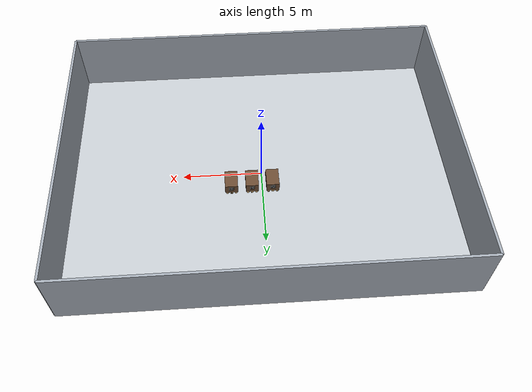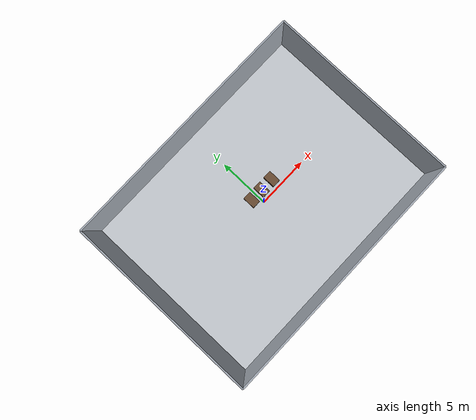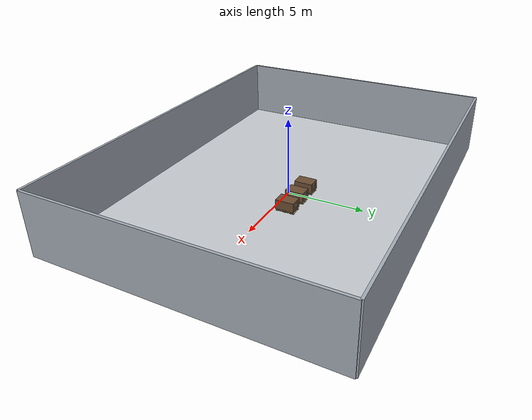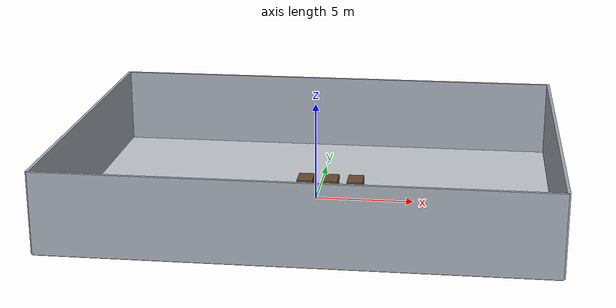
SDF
<sdf version="1.9">
 <world name="demo_room">
  <gravity>0 0 -9.81</gravity>
  <magnetic_field>6e-06 2.3e-05 -4.2e-05</magnetic_field>
  <physics name="dart_physics" type="dart">
   <max_step_size>0.001</max_step_size>
   <real_time_factor>1.0</real_time_factor>
   <real_time_update_rate>1000</real_time_update_rate>
  </physics>
  <plugin filename="gz-sim-physics-system" name="gz::sim::systems::Physics"/>
  <plugin filename="gz-sim-user-commands-system" name="gz::sim::systems::UserCommands"/>
  <plugin filename="gz-sim-scene-broadcaster-system" name="gz::sim::systems::SceneBroadcaster"/>
  <plugin filename="gz-sim-sensors-system" name="gz::sim::systems::Sensors">
   <render_engine>ogre2</render_engine>
  </plugin>
  <light type="directional" name="sun">
   <pose>0 0 10 0 0 0</pose>
   <diffuse>0.9 0.9 0.9 1.0</diffuse>
   <specular>0.2 0.2 0.2 1.0</specular>
   <attenuation>
    <range>1000</range>
    <constant>0.9</constant>
    <linear>0.01</linear>
    <quadratic>0.001</quadratic>
   </attenuation>
   <direction>-0.4 0.1 -0.9</direction>
  </light>
  <model name="floor">
   <static>true</static>
   <link name="floor_link">
    <collision name="floor_collision">
     <geometry><box><size>24 18 0.1</size></box></geometry>
     <surface>
      <friction>
       <ode><mu>200.0</mu><mu2>200.0</mu2><slip1>0.0</slip1><slip2>0.0</slip2></ode>
       <bullet><friction>200.0</friction><friction2>200.0</friction2></bullet>
      </friction>
     </surface>
    </collision>
    <visual name="floor_visual">
     <geometry><box><size>24 18 0.1</size></box></geometry>
     <material><ambient>0.78 0.80 0.82 1.0</ambient><diffuse>0.78 0.80 0.82 1.0</diffuse></material>
    </visual>
   </link>
  </model>
  <model name="north_wall">
   <static>true</static>
   <pose>0 9 2 0 0 0</pose>
   <link name="link">
    <collision name="collision"><geometry><box><size>24 0.15 4.0</size></box></geometry></collision>
    <visual name="visual">
     <geometry><box><size>24 0.15 4.0</size></box></geometry>
     <material><ambient>0.65 0.68 0.72 1.0</ambient><diffuse>0.65 0.68 0.72 1.0</diffuse></material>
    </visual>
   </link>
  </model>
  <model name="south_wall">
   <static>true</static>
   <pose>0 -9 2 0 0 0</pose>
   <link name="link">
    <collision name="collision"><geometry><box><size>24 0.15 4.0</size></box></geometry></collision>
    <visual name="visual">
     <geometry><box><size>24 0.15 4.0</size></box></geometry>
     <material><ambient>0.65 0.68 0.72 1.0</ambient><diffuse>0.65 0.68 0.72 1.0</diffuse></material>
    </visual>
   </link>
  </model>
  <model name="east_wall">
   <static>true</static>
   <pose>12 0 2 0 0 0</pose>
   <link name="link">
    <collision name="collision"><geometry><box><size>0.15 18 4.0</size></box></geometry></collision>
    <visual name="visual">
     <geometry><box><size>0.15 18 4.0</size></box></geometry>
     <material><ambient>0.65 0.68 0.72 1.0</ambient><diffuse>0.65 0.68 0.72 1.0</diffuse></material>
    </visual>
   </link>
  </model>
  <model name="west_wall">
   <static>true</static>
   <pose>-12 0 2 0 0 0</pose>
   <link name="link">
    <collision name="collision"><geometry><box><size>0.15 18 4.0</size></box></geometry></collision>
    <visual name="visual">
     <geometry><box><size>0.15 18 4.0</size></box></geometry>
     <material><ambient>0.65 0.68 0.72 1.0</ambient><diffuse>0.65 0.68 0.72 1.0</diffuse></material>
    </visual>
   </link>
  </model>
  <include>
   <name>pallet_b_south_05</name>
   <uri>model://euro_pallet_tag36h11_05</uri>
   <pose>-0.65 0.90 0 0 0 1.57079632679</pose>
   <static>false</static>
  </include>
  <include>
   <name>pallet_b_south_06</name>
   <uri>model://euro_pallet_tag36h11_06</uri>
   <pose>0.65 0.90 0 0 0 1.57079632679</pose>
   <static>false</static>
  </include>
  <include>
   <name>pallet_b_south_07</name>
   <uri>model://euro_pallet_tag36h11_07</uri>
   <pose>1.95 0.90 0 0 0 1.57079632679</pose>
   <static>false</static>
  </include>
 </world>
</sdf>

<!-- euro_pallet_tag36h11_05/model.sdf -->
<sdf version="1.9">
  <model name="euro_pallet_tag36h11_05">
    <pose>0 0 0 0 0 0</pose>
    <static>false</static>
    <self_collide>false</self_collide>
    <allow_auto_disable>false</allow_auto_disable>

    <link name="pallet_link">
      <pose>0 0 0.06 0 0 0</pose>
      <inertial>
        <pose>0 0 0.072 0 0 0</pose>
        <mass>25.0</mass>
        <inertia>
          <ixx>1.38</ixx>
          <iyy>3.04</iyy>
          <izz>4.33</izz>
          <ixy>0.0</ixy>
          <ixz>0.0</ixz>
          <iyz>0.0</iyz>
        </inertia>
      </inertial>

      <collision name="top_board_outer_left_collision">
        <pose>0 -0.35 0.133 0 0 0</pose>
        <geometry>
          <box>
            <size>1.2 0.10 0.022</size>
          </box>
        </geometry>
      </collision>
      <collision name="top_board_inner_left_collision">
        <pose>0 -0.17 0.133 0 0 0</pose>
        <geometry>
          <box>
            <size>1.2 0.145 0.022</size>
          </box>
        </geometry>
      </collision>
      <collision name="top_board_center_collision">
        <pose>0 0 0.133 0 0 0</pose>
        <geometry>
          <box>
            <size>1.2 0.145 0.022</size>
          </box>
        </geometry>
      </collision>
      <collision name="top_board_inner_right_collision">
        <pose>0 0.17 0.133 0 0 0</pose>
        <geometry>
          <box>
            <size>1.2 0.145 0.022</size>
          </box>
        </geometry>
      </collision>
      <collision name="top_board_outer_right_collision">
        <pose>0 0.35 0.133 0 0 0</pose>
        <geometry>
          <box>
            <size>1.2 0.10 0.022</size>
          </box>
        </geometry>
      </collision>

      <collision name="bottom_board_left_collision">
        <pose>0 -0.34 0.011 0 0 0</pose>
        <geometry>
          <box>
            <size>1.2 0.10 0.022</size>
          </box>
        </geometry>
        <surface>
          <friction>
            <ode>
              <mu>1.2</mu>
              <mu2>1.2</mu2>
              <slip1>0.0</slip1>
              <slip2>0.0</slip2>
            </ode>
            <bullet>
              <friction>1.2</friction>
              <friction2>1.2</friction2>
            </bullet>
          </friction>
        </surface>
      </collision>
      <collision name="bottom_board_center_collision">
        <pose>0 0 0.011 0 0 0</pose>
        <geometry>
          <box>
            <size>1.2 0.10 0.022</size>
          </box>
        </geometry>
        <surface>
          <friction>
            <ode>
              <mu>1.2</mu>
              <mu2>1.2</mu2>
              <slip1>0.0</slip1>
              <slip2>0.0</slip2>
            </ode>
            <bullet>
              <friction>1.2</friction>
              <friction2>1.2</friction2>
            </bullet>
          </friction>
        </surface>
      </collision>
      <collision name="bottom_board_right_collision">
        <pose>0 0.34 0.011 0 0 0</pose>
        <geometry>
          <box>
            <size>1.2 0.10 0.022</size>
          </box>
        </geometry>
        <surface>
          <friction>
            <ode>
              <mu>1.2</mu>
              <mu2>1.2</mu2>
              <slip1>0.0</slip1>
              <slip2>0.0</slip2>
            </ode>
            <bullet>
              <friction>1.2</friction>
              <friction2>1.2</friction2>
            </bullet>
          </friction>
        </surface>
      </collision>

      <collision name="block_1_collision">
        <pose>-0.46 -0.35 0.061 0 0 0</pose>
        <geometry>
          <box>
            <size>0.145 0.10 0.078</size>
          </box>
        </geometry>
      </collision>
      <collision name="block_2_collision">
        <pose>0 -0.35 0.061 0 0 0</pose>
        <geometry>
          <box>
            <size>0.145 0.10 0.078</size>
          </box>
        </geometry>
      </collision>
      <collision name="block_3_collision">
        <pose>0.46 -0.35 0.061 0 0 0</pose>
        <geometry>
          <box>
            <size>0.145 0.10 0.078</size>
          </box>
        </geometry>
      </collision>
      <collision name="block_4_collision">
        <pose>-0.46 0 0.061 0 0 0</pose>
        <geometry>
          <box>
            <size>0.145 0.10 0.078</size>
          </box>
        </geometry>
      </collision>
      <collision name="block_5_collision">
        <pose>0 0 0.061 0 0 0</pose>
        <geometry>
          <box>
            <size>0.145 0.10 0.078</size>
          </box>
        </geometry>
      </collision>
      <collision name="block_6_collision">
        <pose>0.46 0 0.061 0 0 0</pose>
        <geometry>
          <box>
            <size>0.145 0.10 0.078</size>
          </box>
        </geometry>
      </collision>
      <collision name="block_7_collision">
        <pose>-0.46 0.35 0.061 0 0 0</pose>
        <geometry>
          <box>
            <size>0.145 0.10 0.078</size>
          </box>
        </geometry>
      </collision>
      <collision name="block_8_collision">
        <pose>0 0.35 0.061 0 0 0</pose>
        <geometry>
          <box>
            <size>0.145 0.10 0.078</size>
          </box>
        </geometry>
      </collision>
      <collision name="block_9_collision">
        <pose>0.46 0.35 0.061 0 0 0</pose>
        <geometry>
          <box>
            <size>0.145 0.10 0.078</size>
          </box>
        </geometry>
      </collision>
      <collision name="marker_box_collision">
        <pose>0 0 0.444 0 0 0</pose>
        <geometry>
          <box>
            <size>1.2 0.8 0.60</size>
          </box>
        </geometry>
      </collision>

      <visual name="top_board_outer_left">
        <pose>0 -0.35 0.133 0 0 0</pose>
        <geometry>
          <box>
            <size>1.2 0.10 0.022</size>
          </box>
        </geometry>
        <material>
          <ambient>0.67 0.54 0.34 1.0</ambient>
          <diffuse>0.67 0.54 0.34 1.0</diffuse>
        </material>
      </visual>
      <visual name="top_board_inner_left">
        <pose>0 -0.17 0.133 0 0 0</pose>
        <geometry>
          <box>
            <size>1.2 0.145 0.022</size>
          </box>
        </geometry>
        <material>
          <ambient>0.69 0.56 0.36 1.0</ambient>
          <diffuse>0.69 0.56 0.36 1.0</diffuse>
        </material>
      </visual>
      <visual name="top_board_center">
        <pose>0 0 0.133 0 0 0</pose>
        <geometry>
          <box>
            <size>1.2 0.145 0.022</size>
          </box>
        </geometry>
        <material>
          <ambient>0.66 0.53 0.33 1.0</ambient>
          <diffuse>0.66 0.53 0.33 1.0</diffuse>
        </material>
      </visual>
      <visual name="top_board_inner_right">
        <pose>0 0.17 0.133 0 0 0</pose>
        <geometry>
          <box>
            <size>1.2 0.145 0.022</size>
          </box>
        </geometry>
        <material>
          <ambient>0.69 0.56 0.36 1.0</ambient>
          <diffuse>0.69 0.56 0.36 1.0</diffuse>
        </material>
      </visual>
      <visual name="top_board_outer_right">
        <pose>0 0.35 0.133 0 0 0</pose>
        <geometry>
          <box>
            <size>1.2 0.10 0.022</size>
          </box>
        </geometry>
        <material>
          <ambient>0.67 0.54 0.34 1.0</ambient>
          <diffuse>0.67 0.54 0.34 1.0</diffuse>
        </material>
      </visual>

      <visual name="bottom_board_left">
        <pose>0 -0.27 0.011 0 0 0</pose>
        <geometry>
          <box>
            <size>1.2 0.145 0.022</size>
          </box>
        </geometry>
        <material>
          <ambient>0.60 0.48 0.30 1.0</ambient>
          <diffuse>0.60 0.48 0.30 1.0</diffuse>
        </material>
      </visual>
      <visual name="bottom_board_center">
        <pose>0 0 0.011 0 0 0</pose>
        <geometry>
          <box>
            <size>1.2 0.145 0.022</size>
          </box>
        </geometry>
        <material>
          <ambient>0.60 0.48 0.30 1.0</ambient>
          <diffuse>0.60 0.48 0.30 1.0</diffuse>
        </material>
      </visual>
      <visual name="bottom_board_right">
        <pose>0 0.27 0.011 0 0 0</pose>
        <geometry>
          <box>
            <size>1.2 0.145 0.022</size>
          </box>
        </geometry>
        <material>
          <ambient>0.60 0.48 0.30 1.0</ambient>
          <diffuse>0.60 0.48 0.30 1.0</diffuse>
        </material>
      </visual>

      <visual name="block_1">
        <pose>-0.46 -0.35 0.061 0 0 0</pose>
        <geometry>
          <box>
            <size>0.145 0.10 0.078</size>
          </box>
        </geometry>
        <material>
          <ambient>0.55 0.43 0.26 1.0</ambient>
          <diffuse>0.55 0.43 0.26 1.0</diffuse>
        </material>
      </visual>
      <visual name="block_2">
        <pose>0 -0.35 0.061 0 0 0</pose>
        <geometry>
          <box>
            <size>0.145 0.10 0.078</size>
          </box>
        </geometry>
        <material>
          <ambient>0.55 0.43 0.26 1.0</ambient>
          <diffuse>0.55 0.43 0.26 1.0</diffuse>
        </material>
      </visual>
      <visual name="block_3">
        <pose>0.46 -0.35 0.061 0 0 0</pose>
        <geometry>
          <box>
            <size>0.145 0.10 0.078</size>
          </box>
        </geometry>
        <material>
          <ambient>0.55 0.43 0.26 1.0</ambient>
          <diffuse>0.55 0.43 0.26 1.0</diffuse>
        </material>
      </visual>
      <visual name="block_4">
        <pose>-0.46 0 0.061 0 0 0</pose>
        <geometry>
          <box>
            <size>0.145 0.10 0.078</size>
          </box>
        </geometry>
        <material>
          <ambient>0.55 0.43 0.26 1.0</ambient>
          <diffuse>0.55 0.43 0.26 1.0</diffuse>
        </material>
      </visual>
      <visual name="block_5">
        <pose>0 0 0.061 0 0 0</pose>
        <geometry>
          <box>
            <size>0.145 0.10 0.078</size>
          </box>
        </geometry>
        <material>
          <ambient>0.55 0.43 0.26 1.0</ambient>
          <diffuse>0.55 0.43 0.26 1.0</diffuse>
        </material>
      </visual>
      <visual name="block_6">
        <pose>0.46 0 0.061 0 0 0</pose>
        <geometry>
          <box>
            <size>0.145 0.10 0.078</size>
          </box>
        </geometry>
        <material>
          <ambient>0.55 0.43 0.26 1.0</ambient>
          <diffuse>0.55 0.43 0.26 1.0</diffuse>
        </material>
      </visual>
      <visual name="block_7">
        <pose>-0.46 0.35 0.061 0 0 0</pose>
        <geometry>
          <box>
            <size>0.145 0.10 0.078</size>
          </box>
        </geometry>
        <material>
          <ambient>0.55 0.43 0.26 1.0</ambient>
          <diffuse>0.55 0.43 0.26 1.0</diffuse>
        </material>
      </visual>
      <visual name="block_8">
        <pose>0 0.35 0.061 0 0 0</pose>
        <geometry>
          <box>
            <size>0.145 0.10 0.078</size>
          </box>
        </geometry>
        <material>
          <ambient>0.55 0.43 0.26 1.0</ambient>
          <diffuse>0.55 0.43 0.26 1.0</diffuse>
        </material>
      </visual>
      <visual name="block_9">
        <pose>0.46 0.35 0.061 0 0 0</pose>
        <geometry>
          <box>
            <size>0.145 0.10 0.078</size>
          </box>
        </geometry>
        <material>
          <ambient>0.55 0.43 0.26 1.0</ambient>
          <diffuse>0.55 0.43 0.26 1.0</diffuse>
        </material>
      </visual>
      <visual name="apriltag_front_black_plate">
        <pose>0.602 0 0.500 0 0 0</pose>
        <geometry>
          <box>
            <size>0.002 0.300 0.300</size>
          </box>
        </geometry>
        <material>
          <ambient>0 0 0 1</ambient>
          <diffuse>0 0 0 1</diffuse>
          <specular>0 0 0 1</specular>
        </material>
      </visual>
      <visual name="apriltag_front_white_r00_00_09">
        <pose>0.605 0.000 0.635 0 0 0</pose>
        <geometry>
          <box>
            <size>0.003 0.300 0.030</size>
          </box>
        </geometry>
        <material>
          <ambient>1 1 1 1</ambient>
          <diffuse>1 1 1 1</diffuse>
          <specular>0.05 0.05 0.05 1</specular>
        </material>
      </visual>
      <visual name="apriltag_front_white_r01_00_00">
        <pose>0.605 -0.135 0.605 0 0 0</pose>
        <geometry>
          <box>
            <size>0.003 0.030 0.030</size>
          </box>
        </geometry>
        <material>
          <ambient>1 1 1 1</ambient>
          <diffuse>1 1 1 1</diffuse>
          <specular>0.05 0.05 0.05 1</specular>
        </material>
      </visual>
      <visual name="apriltag_front_white_r01_09_09">
        <pose>0.605 0.135 0.605 0 0 0</pose>
        <geometry>
          <box>
            <size>0.003 0.030 0.030</size>
          </box>
        </geometry>
        <material>
          <ambient>1 1 1 1</ambient>
          <diffuse>1 1 1 1</diffuse>
          <specular>0.05 0.05 0.05 1</specular>
        </material>
      </visual>
      <visual name="apriltag_front_white_r02_00_00">
        <pose>0.605 -0.135 0.575 0 0 0</pose>
        <geometry>
          <box>
            <size>0.003 0.030 0.030</size>
          </box>
        </geometry>
        <material>
          <ambient>1 1 1 1</ambient>
          <diffuse>1 1 1 1</diffuse>
          <specular>0.05 0.05 0.05 1</specular>
        </material>
      </visual>
      <visual name="apriltag_front_white_r02_02_05">
        <pose>0.605 -0.030 0.575 0 0 0</pose>
        <geometry>
          <box>
            <size>0.003 0.120 0.030</size>
          </box>
        </geometry>
        <material>
          <ambient>1 1 1 1</ambient>
          <diffuse>1 1 1 1</diffuse>
          <specular>0.05 0.05 0.05 1</specular>
        </material>
      </visual>
      <visual name="apriltag_front_white_r02_09_09">
        <pose>0.605 0.135 0.575 0 0 0</pose>
        <geometry>
          <box>
            <size>0.003 0.030 0.030</size>
          </box>
        </geometry>
        <material>
          <ambient>1 1 1 1</ambient>
          <diffuse>1 1 1 1</diffuse>
          <specular>0.05 0.05 0.05 1</specular>
        </material>
      </visual>
      <visual name="apriltag_front_white_r03_00_00">
        <pose>0.605 -0.135 0.545 0 0 0</pose>
        <geometry>
          <box>
            <size>0.003 0.030 0.030</size>
          </box>
        </geometry>
        <material>
          <ambient>1 1 1 1</ambient>
          <diffuse>1 1 1 1</diffuse>
          <specular>0.05 0.05 0.05 1</specular>
        </material>
      </visual>
      <visual name="apriltag_front_white_r03_02_03">
        <pose>0.605 -0.060 0.545 0 0 0</pose>
        <geometry>
          <box>
            <size>0.003 0.060 0.030</size>
          </box>
        </geometry>
        <material>
          <ambient>1 1 1 1</ambient>
          <diffuse>1 1 1 1</diffuse>
          <specular>0.05 0.05 0.05 1</specular>
        </material>
      </visual>
      <visual name="apriltag_front_white_r03_07_07">
        <pose>0.605 0.075 0.545 0 0 0</pose>
        <geometry>
          <box>
            <size>0.003 0.030 0.030</size>
          </box>
        </geometry>
        <material>
          <ambient>1 1 1 1</ambient>
          <diffuse>1 1 1 1</diffuse>
          <specular>0.05 0.05 0.05 1</specular>
        </material>
      </visual>
      <visual name="apriltag_front_white_r03_09_09">
        <pose>0.605 0.135 0.545 0 0 0</pose>
        <geometry>
          <box>
            <size>0.003 0.030 0.030</size>
          </box>
        </geometry>
        <material>
          <ambient>1 1 1 1</ambient>
          <diffuse>1 1 1 1</diffuse>
          <specular>0.05 0.05 0.05 1</specular>
        </material>
      </visual>
      <visual name="apriltag_front_white_r04_00_00">
        <pose>0.605 -0.135 0.515 0 0 0</pose>
        <geometry>
          <box>
            <size>0.003 0.030 0.030</size>
          </box>
        </geometry>
        <material>
          <ambient>1 1 1 1</ambient>
          <diffuse>1 1 1 1</diffuse>
          <specular>0.05 0.05 0.05 1</specular>
        </material>
      </visual>
      <visual name="apriltag_front_white_r04_02_03">
        <pose>0.605 -0.060 0.515 0 0 0</pose>
        <geometry>
          <box>
            <size>0.003 0.060 0.030</size>
          </box>
        </geometry>
        <material>
          <ambient>1 1 1 1</ambient>
          <diffuse>1 1 1 1</diffuse>
          <specular>0.05 0.05 0.05 1</specular>
        </material>
      </visual>
      <visual name="apriltag_front_white_r04_05_06">
        <pose>0.605 0.030 0.515 0 0 0</pose>
        <geometry>
          <box>
            <size>0.003 0.060 0.030</size>
          </box>
        </geometry>
        <material>
          <ambient>1 1 1 1</ambient>
          <diffuse>1 1 1 1</diffuse>
          <specular>0.05 0.05 0.05 1</specular>
        </material>
      </visual>
      <visual name="apriltag_front_white_r04_09_09">
        <pose>0.605 0.135 0.515 0 0 0</pose>
        <geometry>
          <box>
            <size>0.003 0.030 0.030</size>
          </box>
        </geometry>
        <material>
          <ambient>1 1 1 1</ambient>
          <diffuse>1 1 1 1</diffuse>
          <specular>0.05 0.05 0.05 1</specular>
        </material>
      </visual>
      <visual name="apriltag_front_white_r05_00_00">
        <pose>0.605 -0.135 0.485 0 0 0</pose>
        <geometry>
          <box>
            <size>0.003 0.030 0.030</size>
          </box>
        </geometry>
        <material>
          <ambient>1 1 1 1</ambient>
          <diffuse>1 1 1 1</diffuse>
          <specular>0.05 0.05 0.05 1</specular>
        </material>
      </visual>
      <visual name="apriltag_front_white_r05_02_02">
        <pose>0.605 -0.075 0.485 0 0 0</pose>
        <geometry>
          <box>
            <size>0.003 0.030 0.030</size>
          </box>
        </geometry>
        <material>
          <ambient>1 1 1 1</ambient>
          <diffuse>1 1 1 1</diffuse>
          <specular>0.05 0.05 0.05 1</specular>
        </material>
      </visual>
      <visual name="apriltag_front_white_r05_04_04">
        <pose>0.605 -0.015 0.485 0 0 0</pose>
        <geometry>
          <box>
            <size>0.003 0.030 0.030</size>
          </box>
        </geometry>
        <material>
          <ambient>1 1 1 1</ambient>
          <diffuse>1 1 1 1</diffuse>
          <specular>0.05 0.05 0.05 1</specular>
        </material>
      </visual>
      <visual name="apriltag_front_white_r05_06_07">
        <pose>0.605 0.060 0.485 0 0 0</pose>
        <geometry>
          <box>
            <size>0.003 0.060 0.030</size>
          </box>
        </geometry>
        <material>
          <ambient>1 1 1 1</ambient>
          <diffuse>1 1 1 1</diffuse>
          <specular>0.05 0.05 0.05 1</specular>
        </material>
      </visual>
      <visual name="apriltag_front_white_r05_09_09">
        <pose>0.605 0.135 0.485 0 0 0</pose>
        <geometry>
          <box>
            <size>0.003 0.030 0.030</size>
          </box>
        </geometry>
        <material>
          <ambient>1 1 1 1</ambient>
          <diffuse>1 1 1 1</diffuse>
          <specular>0.05 0.05 0.05 1</specular>
        </material>
      </visual>
      <visual name="apriltag_front_white_r06_00_00">
        <pose>0.605 -0.135 0.455 0 0 0</pose>
        <geometry>
          <box>
            <size>0.003 0.030 0.030</size>
          </box>
        </geometry>
        <material>
          <ambient>1 1 1 1</ambient>
          <diffuse>1 1 1 1</diffuse>
          <specular>0.05 0.05 0.05 1</specular>
        </material>
      </visual>
      <visual name="apriltag_front_white_r06_04_06">
        <pose>0.605 0.015 0.455 0 0 0</pose>
        <geometry>
          <box>
            <size>0.003 0.090 0.030</size>
          </box>
        </geometry>
        <material>
          <ambient>1 1 1 1</ambient>
          <diffuse>1 1 1 1</diffuse>
          <specular>0.05 0.05 0.05 1</specular>
        </material>
      </visual>
      <visual name="apriltag_front_white_r06_09_09">
        <pose>0.605 0.135 0.455 0 0 0</pose>
        <geometry>
          <box>
            <size>0.003 0.030 0.030</size>
          </box>
        </geometry>
        <material>
          <ambient>1 1 1 1</ambient>
          <diffuse>1 1 1 1</diffuse>
          <specular>0.05 0.05 0.05 1</specular>
        </material>
      </visual>
      <visual name="apriltag_front_white_r07_00_00">
        <pose>0.605 -0.135 0.425 0 0 0</pose>
        <geometry>
          <box>
            <size>0.003 0.030 0.030</size>
          </box>
        </geometry>
        <material>
          <ambient>1 1 1 1</ambient>
          <diffuse>1 1 1 1</diffuse>
          <specular>0.05 0.05 0.05 1</specular>
        </material>
      </visual>
      <visual name="apriltag_front_white_r07_02_02">
        <pose>0.605 -0.075 0.425 0 0 0</pose>
        <geometry>
          <box>
            <size>0.003 0.030 0.030</size>
          </box>
        </geometry>
        <material>
          <ambient>1 1 1 1</ambient>
          <diffuse>1 1 1 1</diffuse>
          <specular>0.05 0.05 0.05 1</specular>
        </material>
      </visual>
      <visual name="apriltag_front_white_r07_04_05">
        <pose>0.605 0.000 0.425 0 0 0</pose>
        <geometry>
          <box>
            <size>0.003 0.060 0.030</size>
          </box>
        </geometry>
        <material>
          <ambient>1 1 1 1</ambient>
          <diffuse>1 1 1 1</diffuse>
          <specular>0.05 0.05 0.05 1</specular>
        </material>
      </visual>
      <visual name="apriltag_front_white_r07_09_09">
        <pose>0.605 0.135 0.425 0 0 0</pose>
        <geometry>
          <box>
            <size>0.003 0.030 0.030</size>
          </box>
        </geometry>
        <material>
          <ambient>1 1 1 1</ambient>
          <diffuse>1 1 1 1</diffuse>
          <specular>0.05 0.05 0.05 1</specular>
        </material>
      </visual>
      <visual name="apriltag_front_white_r08_00_00">
        <pose>0.605 -0.135 0.395 0 0 0</pose>
        <geometry>
          <box>
            <size>0.003 0.030 0.030</size>
          </box>
        </geometry>
        <material>
          <ambient>1 1 1 1</ambient>
          <diffuse>1 1 1 1</diffuse>
          <specular>0.05 0.05 0.05 1</specular>
        </material>
      </visual>
      <visual name="apriltag_front_white_r08_09_09">
        <pose>0.605 0.135 0.395 0 0 0</pose>
        <geometry>
          <box>
            <size>0.003 0.030 0.030</size>
          </box>
        </geometry>
        <material>
          <ambient>1 1 1 1</ambient>
          <diffuse>1 1 1 1</diffuse>
          <specular>0.05 0.05 0.05 1</specular>
        </material>
      </visual>
      <visual name="apriltag_front_white_r09_00_09">
        <pose>0.605 0.000 0.365 0 0 0</pose>
        <geometry>
          <box>
            <size>0.003 0.300 0.030</size>
          </box>
        </geometry>
        <material>
          <ambient>1 1 1 1</ambient>
          <diffuse>1 1 1 1</diffuse>
          <specular>0.05 0.05 0.05 1</specular>
        </material>
      </visual>
      <visual name="apriltag_back_black_plate">
        <pose>-0.602 0 0.500 0 0 0</pose>
        <geometry>
          <box>
            <size>0.002 0.300 0.300</size>
          </box>
        </geometry>
        <material>
          <ambient>0 0 0 1</ambient>
          <diffuse>0 0 0 1</diffuse>
          <specular>0 0 0 1</specular>
        </material>
      </visual>
      <visual name="apriltag_back_white_r00_00_09">
        <pose>-0.605 -0.000 0.635 0 0 0</pose>
        <geometry>
          <box>
            <size>0.003 0.300 0.030</size>
          </box>
        </geometry>
        <material>
          <ambient>1 1 1 1</ambient>
          <diffuse>1 1 1 1</diffuse>
          <specular>0.05 0.05 0.05 1</specular>
        </material>
      </visual>
      <visual name="apriltag_back_white_r01_00_00">
        <pose>-0.605 0.135 0.605 0 0 0</pose>
        <geometry>
          <box>
            <size>0.003 0.030 0.030</size>
          </box>
        </geometry>
        <material>
          <ambient>1 1 1 1</ambient>
          <diffuse>1 1 1 1</diffuse>
          <specular>0.05 0.05 0.05 1</specular>
        </material>
      </visual>
      <visual name="apriltag_back_white_r01_09_09">
        <pose>-0.605 -0.135 0.605 0 0 0</pose>
        <geometry>
          <box>
            <size>0.003 0.030 0.030</size>
          </box>
        </geometry>
        <material>
          <ambient>1 1 1 1</ambient>
          <diffuse>1 1 1 1</diffuse>
          <specular>0.05 0.05 0.05 1</specular>
        </material>
      </visual>
      <visual name="apriltag_back_white_r02_00_00">
        <pose>-0.605 0.135 0.575 0 0 0</pose>
        <geometry>
          <box>
            <size>0.003 0.030 0.030</size>
          </box>
        </geometry>
        <material>
          <ambient>1 1 1 1</ambient>
          <diffuse>1 1 1 1</diffuse>
          <specular>0.05 0.05 0.05 1</specular>
        </material>
      </visual>
      <visual name="apriltag_back_white_r02_02_05">
        <pose>-0.605 0.030 0.575 0 0 0</pose>
        <geometry>
          <box>
            <size>0.003 0.120 0.030</size>
          </box>
        </geometry>
        <material>
          <ambient>1 1 1 1</ambient>
          <diffuse>1 1 1 1</diffuse>
          <specular>0.05 0.05 0.05 1</specular>
        </material>
      </visual>
      <visual name="apriltag_back_white_r02_09_09">
        <pose>-0.605 -0.135 0.575 0 0 0</pose>
        <geometry>
          <box>
            <size>0.003 0.030 0.030</size>
          </box>
        </geometry>
        <material>
          <ambient>1 1 1 1</ambient>
          <diffuse>1 1 1 1</diffuse>
          <specular>0.05 0.05 0.05 1</specular>
        </material>
      </visual>
      <visual name="apriltag_back_white_r03_00_00">
        <pose>-0.605 0.135 0.545 0 0 0</pose>
        <geometry>
          <box>
            <size>0.003 0.030 0.030</size>
          </box>
        </geometry>
        <material>
          <ambient>1 1 1 1</ambient>
          <diffuse>1 1 1 1</diffuse>
          <specular>0.05 0.05 0.05 1</specular>
        </material>
      </visual>
      <visual name="apriltag_back_white_r03_02_03">
        <pose>-0.605 0.060 0.545 0 0 0</pose>
        <geometry>
          <box>
            <size>0.003 0.060 0.030</size>
          </box>
        </geometry>
        <material>
          <ambient>1 1 1 1</ambient>
          <diffuse>1 1 1 1</diffuse>
          <specular>0.05 0.05 0.05 1</specular>
        </material>
      </visual>
      <visual name="apriltag_back_white_r03_07_07">
        <pose>-0.605 -0.075 0.545 0 0 0</pose>
        <geometry>
          <box>
            <size>0.003 0.030 0.030</size>
          </box>
        </geometry>
        <material>
          <ambient>1 1 1 1</ambient>
          <diffuse>1 1 1 1</diffuse>
          <specular>0.05 0.05 0.05 1</specular>
        </material>
      </visual>
      <visual name="apriltag_back_white_r03_09_09">
        <pose>-0.605 -0.135 0.545 0 0 0</pose>
        <geometry>
          <box>
            <size>0.003 0.030 0.030</size>
          </box>
        </geometry>
        <material>
          <ambient>1 1 1 1</ambient>
          <diffuse>1 1 1 1</diffuse>
          <specular>0.05 0.05 0.05 1</specular>
        </material>
      </visual>
      <visual name="apriltag_back_white_r04_00_00">
        <pose>-0.605 0.135 0.515 0 0 0</pose>
        <geometry>
          <box>
            <size>0.003 0.030 0.030</size>
          </box>
        </geometry>
        <material>
          <ambient>1 1 1 1</ambient>
          <diffuse>1 1 1 1</diffuse>
          <specular>0.05 0.05 0.05 1</specular>
        </material>
      </visual>
      <visual name="apriltag_back_white_r04_02_03">
        <pose>-0.605 0.060 0.515 0 0 0</pose>
        <geometry>
          <box>
            <size>0.003 0.060 0.030</size>
          </box>
        </geometry>
        <material>
          <ambient>1 1 1 1</ambient>
          <diffuse>1 1 1 1</diffuse>
          <specular>0.05 0.05 0.05 1</specular>
        </material>
      </visual>
      <visual name="apriltag_back_white_r04_05_06">
        <pose>-0.605 -0.030 0.515 0 0 0</pose>
        <geometry>
          <box>
            <size>0.003 0.060 0.030</size>
          </box>
        </geometry>
        <material>
          <ambient>1 1 1 1</ambient>
          <diffuse>1 1 1 1</diffuse>
          <specular>0.05 0.05 0.05 1</specular>
        </material>
      </visual>
      <visual name="apriltag_back_white_r04_09_09">
        <pose>-0.605 -0.135 0.515 0 0 0</pose>
        <geometry>
          <box>
            <size>0.003 0.030 0.030</size>
          </box>
        </geometry>
        <material>
          <ambient>1 1 1 1</ambient>
          <diffuse>1 1 1 1</diffuse>
          <specular>0.05 0.05 0.05 1</specular>
        </material>
      </visual>
      <visual name="apriltag_back_white_r05_00_00">
        <pose>-0.605 0.135 0.485 0 0 0</pose>
        <geometry>
          <box>
            <size>0.003 0.030 0.030</size>
          </box>
        </geometry>
        <material>
          <ambient>1 1 1 1</ambient>
          <diffuse>1 1 1 1</diffuse>
          <specular>0.05 0.05 0.05 1</specular>
        </material>
      </visual>
      <visual name="apriltag_back_white_r05_02_02">
        <pose>-0.605 0.075 0.485 0 0 0</pose>
        <geometry>
          <box>
            <size>0.003 0.030 0.030</size>
          </box>
        </geometry>
        <material>
          <ambient>1 1 1 1</ambient>
          <diffuse>1 1 1 1</diffuse>
          <specular>0.05 0.05 0.05 1</specular>
        </material>
      </visual>
      <visual name="apriltag_back_white_r05_04_04">
        <pose>-0.605 0.015 0.485 0 0 0</pose>
        <geometry>
          <box>
            <size>0.003 0.030 0.030</size>
          </box>
        </geometry>
        <material>
          <ambient>1 1 1 1</ambient>
          <diffuse>1 1 1 1</diffuse>
          <specular>0.05 0.05 0.05 1</specular>
        </material>
      </visual>
      <visual name="apriltag_back_white_r05_06_07">
        <pose>-0.605 -0.060 0.485 0 0 0</pose>
        <geometry>
          <box>
            <size>0.003 0.060 0.030</size>
          </box>
        </geometry>
        <material>
          <ambient>1 1 1 1</ambient>
          <diffuse>1 1 1 1</diffuse>
          <specular>0.05 0.05 0.05 1</specular>
        </material>
      </visual>
      <visual name="apriltag_back_white_r05_09_09">
        <pose>-0.605 -0.135 0.485 0 0 0</pose>
        <geometry>
          <box>
            <size>0.003 0.030 0.030</size>
          </box>
        </geometry>
        <material>
          <ambient>1 1 1 1</ambient>
          <diffuse>1 1 1 1</diffuse>
          <specular>0.05 0.05 0.05 1</specular>
        </material>
      </visual>
      <visual name="apriltag_back_white_r06_00_00">
        <pose>-0.605 0.135 0.455 0 0 0</pose>
        <geometry>
          <box>
            <size>0.003 0.030 0.030</size>
          </box>
        </geometry>
        <material>
          <ambient>1 1 1 1</ambient>
          <diffuse>1 1 1 1</diffuse>
          <specular>0.05 0.05 0.05 1</specular>
        </material>
      </visual>
      <visual name="apriltag_back_white_r06_04_06">
        <pose>-0.605 -0.015 0.455 0 0 0</pose>
        <geometry>
          <box>
            <size>0.003 0.090 0.030</size>
          </box>
        </geometry>
        <material>
          <ambient>1 1 1 1</ambient>
          <diffuse>1 1 1 1</diffuse>
          <specular>0.05 0.05 0.05 1</specular>
        </material>
      </visual>
      <visual name="apriltag_back_white_r06_09_09">
        <pose>-0.605 -0.135 0.455 0 0 0</pose>
        <geometry>
          <box>
            <size>0.003 0.030 0.030</size>
          </box>
        </geometry>
        <material>
          <ambient>1 1 1 1</ambient>
          <diffuse>1 1 1 1</diffuse>
          <specular>0.05 0.05 0.05 1</specular>
        </material>
      </visual>
      <visual name="apriltag_back_white_r07_00_00">
        <pose>-0.605 0.135 0.425 0 0 0</pose>
        <geometry>
          <box>
            <size>0.003 0.030 0.030</size>
          </box>
        </geometry>
        <material>
          <ambient>1 1 1 1</ambient>
          <diffuse>1 1 1 1</diffuse>
          <specular>0.05 0.05 0.05 1</specular>
        </material>
      </visual>
      <visual name="apriltag_back_white_r07_02_02">
        <pose>-0.605 0.075 0.425 0 0 0</pose>
        <geometry>
          <box>
            <size>0.003 0.030 0.030</size>
          </box>
        </geometry>
        <material>
          <ambient>1 1 1 1</ambient>
          <diffuse>1 1 1 1</diffuse>
          <specular>0.05 0.05 0.05 1</specular>
        </material>
      </visual>
      <visual name="apriltag_back_white_r07_04_05">
        <pose>-0.605 -0.000 0.425 0 0 0</pose>
        <geometry>
          <box>
            <size>0.003 0.060 0.030</size>
          </box>
        </geometry>
        <material>
          <ambient>1 1 1 1</ambient>
          <diffuse>1 1 1 1</diffuse>
          <specular>0.05 0.05 0.05 1</specular>
        </material>
      </visual>
      <visual name="apriltag_back_white_r07_09_09">
        <pose>-0.605 -0.135 0.425 0 0 0</pose>
        <geometry>
          <box>
            <size>0.003 0.030 0.030</size>
          </box>
        </geometry>
        <material>
          <ambient>1 1 1 1</ambient>
          <diffuse>1 1 1 1</diffuse>
          <specular>0.05 0.05 0.05 1</specular>
        </material>
      </visual>
      <visual name="apriltag_back_white_r08_00_00">
        <pose>-0.605 0.135 0.395 0 0 0</pose>
        <geometry>
          <box>
            <size>0.003 0.030 0.030</size>
          </box>
        </geometry>
        <material>
          <ambient>1 1 1 1</ambient>
          <diffuse>1 1 1 1</diffuse>
          <specular>0.05 0.05 0.05 1</specular>
        </material>
      </visual>
      <visual name="apriltag_back_white_r08_09_09">
        <pose>-0.605 -0.135 0.395 0 0 0</pose>
        <geometry>
          <box>
            <size>0.003 0.030 0.030</size>
          </box>
        </geometry>
        <material>
          <ambient>1 1 1 1</ambient>
          <diffuse>1 1 1 1</diffuse>
          <specular>0.05 0.05 0.05 1</specular>
        </material>
      </visual>
      <visual name="apriltag_back_white_r09_00_09">
        <pose>-0.605 -0.000 0.365 0 0 0</pose>
        <geometry>
          <box>
            <size>0.003 0.300 0.030</size>
          </box>
        </geometry>
        <material>
          <ambient>1 1 1 1</ambient>
          <diffuse>1 1 1 1</diffuse>
          <specular>0.05 0.05 0.05 1</specular>
        </material>
      </visual>
      <visual name="marker_box">
        <pose>0 0 0.444 0 0 0</pose>
        <geometry>
          <box>
            <size>1.2 0.8 0.60</size>
          </box>
        </geometry>
        <material>
          <ambient>0.35 0.24 0.16 1.0</ambient>
          <diffuse>0.42 0.30 0.20 1.0</diffuse>
          <specular>0.04 0.035 0.03 1.0</specular>
        </material>
      </visual>
    </link>
  </model>
</sdf>
